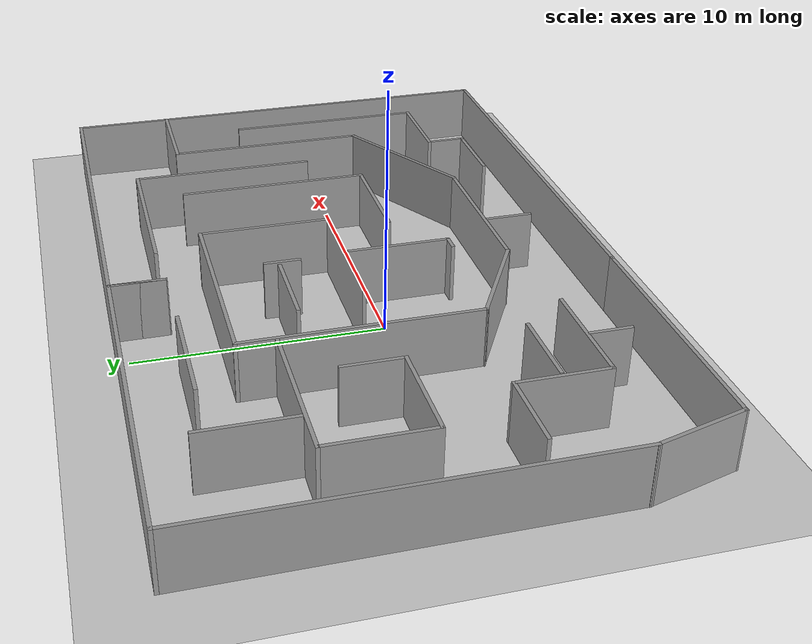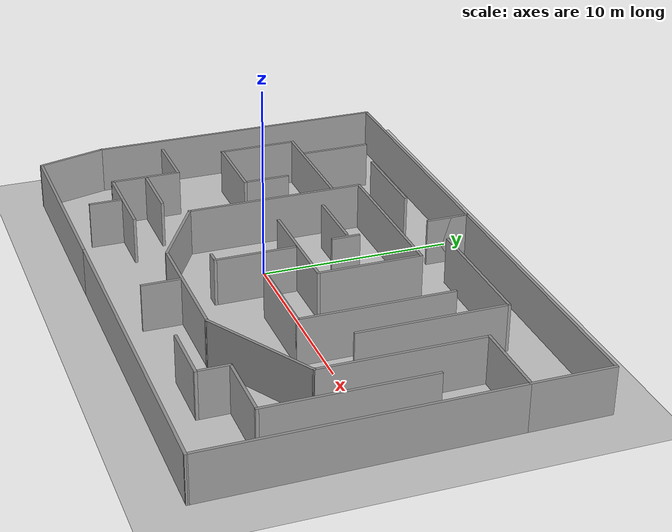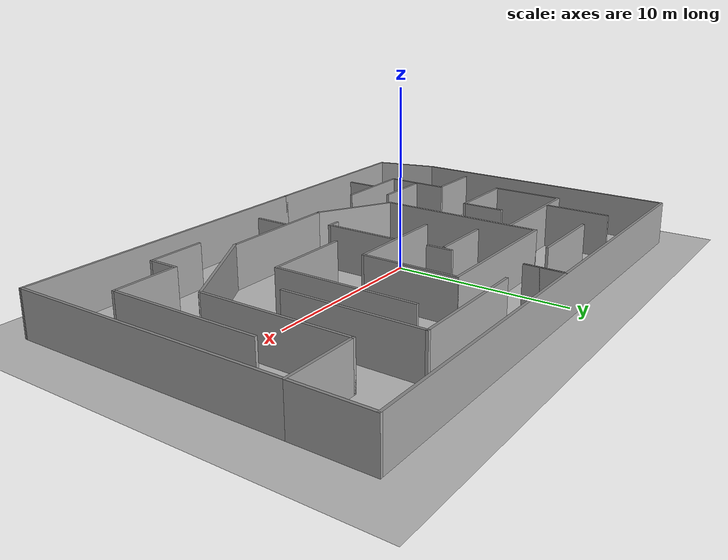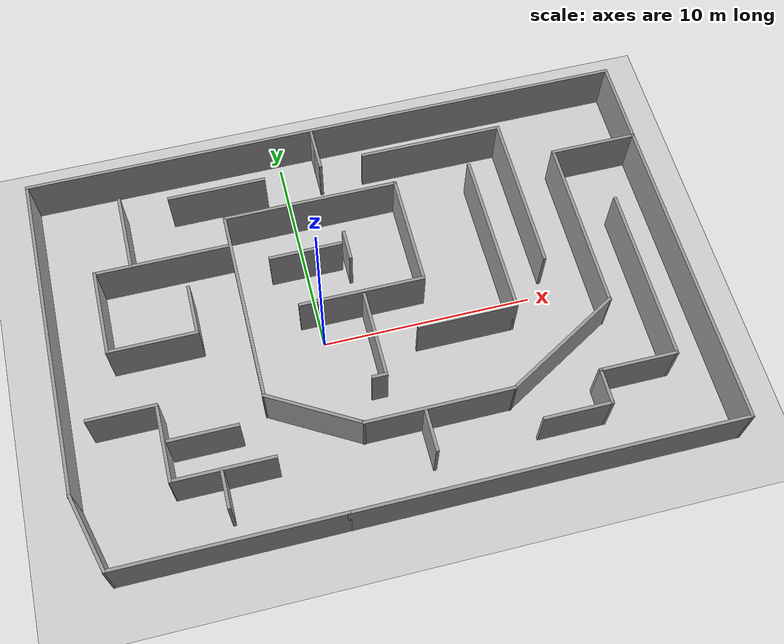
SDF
<sdf version="1.7">
 <world name="default">
  <light name="sun" type="directional">
   <pose>0 0 10 0 -0 0</pose>
   <diffuse>0.8 0.8 0.8 1</diffuse>
   <specular>0.2 0.2 0.2 1</specular>
   <attenuation>
    <range>1000</range>
    <constant>0.9</constant>
    <linear>0.01</linear>
    <quadratic>0.001</quadratic>
   </attenuation>
   <direction>-0.5 0.1 -0.9</direction>
   <spot><inner_angle>0</inner_angle><outer_angle>0</outer_angle><falloff>0</falloff></spot>
  </light>
  <model name="ground_plane">
   <static>1</static>
   <link name="link">
    <collision name="collision">
     <geometry><plane><normal>0 0 1</normal><size>100 100</size></plane></geometry>
     <surface>
      <contact><collide_bitmask>65535</collide_bitmask></contact>
      <friction><ode><mu>100</mu><mu2>50</mu2></ode></friction>
     </surface>
    </collision>
    <visual name="visual">
     <cast_shadows>0</cast_shadows>
     <geometry><plane><normal>0 0 1</normal><size>100 100</size></plane></geometry>
     <material>
      <script><uri>file://media/materials/scripts/gazebo.material</uri><name>Gazebo/Grey</name></script>
     </material>
    </visual>
   </link>
  </model>
  <gravity>0 0 -9.8</gravity>
  <magnetic_field>6e-06 2.3e-05 -4.2e-05</magnetic_field>
  <atmosphere type="adiabatic"/>
  <physics type="ode">
   <max_step_size>0.001</max_step_size>
   <real_time_factor>1</real_time_factor>
   <real_time_update_rate>1000</real_time_update_rate>
  </physics>
  <scene><ambient>0.4 0.4 0.4 1</ambient><background>0.7 0.7 0.7 1</background><shadows>1</shadows></scene>
  <spherical_coordinates>
   <surface_model>EARTH_WGS84</surface_model>
   <latitude_deg>0</latitude_deg>
   <longitude_deg>0</longitude_deg>
   <elevation>0</elevation>
   <heading_deg>0</heading_deg>
  </spherical_coordinates>
  <model name="rede.world">
   <pose>2.4423 0.706411 0 0 -0 0</pose>
   <link name="Wall_10">
    <collision name="Wall_10_Collision">
     <geometry><box><size>4.25 0.15 2.5</size></box></geometry>
     <pose>0 0 1.25 0 -0 0</pose>
    </collision>
    <visual name="Wall_10_Visual">
     <pose>0 0 1.25 0 -0 0</pose>
     <geometry><box><size>4.25 0.15 2.5</size></box></geometry>
     <material>
      <script><uri>file://media/materials/scripts/gazebo.material</uri><name>Gazebo/Grey</name></script>
      <ambient>1 1 1 1</ambient>
     </material>
     <meta><layer>0</layer></meta>
    </visual>
    <pose>14.6482 7.65983 0 0 -0 1.5708</pose>
   </link>
   <link name="Wall_11">
    <collision name="Wall_11_Collision">
     <geometry><box><size>29.5 0.15 2.5</size></box></geometry>
     <pose>0 0 1.25 0 -0 0</pose>
    </collision>
    <visual name="Wall_11_Visual">
     <pose>0 0 1.25 0 -0 0</pose>
     <geometry><box><size>29.5 0.15 2.5</size></box></geometry>
     <material>
      <script><uri>file://media/materials/scripts/gazebo.material</uri><name>Gazebo/Grey</name></script>
      <ambient>1 1 1 1</ambient>
     </material>
     <meta><layer>0</layer></meta>
    </visual>
    <pose>-0.026829 9.70983 0 0 -0 3.14159</pose>
   </link>
   <link name="Wall_12">
    <collision name="Wall_12_Collision">
     <geometry><box><size>16 0.15 2.5</size></box></geometry>
     <pose>0 0 1.25 0 -0 0</pose>
    </collision>
    <visual name="Wall_12_Visual">
     <pose>0 0 1.25 0 -0 0</pose>
     <geometry><box><size>16 0.15 2.5</size></box></geometry>
     <material>
      <script><uri>file://media/materials/scripts/gazebo.material</uri><name>Gazebo/Grey</name></script>
      <ambient>1 1 1 1</ambient>
     </material>
     <meta><layer>0</layer></meta>
    </visual>
    <pose>-14.7018 1.78483 0 0 -0 -1.5708</pose>
   </link>
   <link name="Wall_13">
    <collision name="Wall_13_Collision">
     <geometry><box><size>3.8327 0.15 2.5</size></box></geometry>
     <pose>0 0 1.25 0 -0 0</pose>
    </collision>
    <visual name="Wall_13_Visual">
     <pose>0 0 1.25 0 -0 0</pose>
     <geometry><box><size>3.8327 0.15 2.5</size></box></geometry>
     <material>
      <script><uri>file://media/materials/scripts/gazebo.material</uri><name>Gazebo/Grey</name></script>
      <ambient>1 1 1 1</ambient>
     </material>
     <meta><layer>0</layer></meta>
    </visual>
    <pose>-14.2166 -7.91644 0 0 -0 -1.30414</pose>
   </link>
   <link name="Wall_14">
    <collision name="Wall_14_Collision">
     <geometry><box><size>10.5 0.15 2.5</size></box></geometry>
     <pose>0 0 1.25 0 -0 0</pose>
    </collision>
    <visual name="Wall_14_Visual">
     <pose>0 0 1.25 0 -0 0</pose>
     <geometry><box><size>10.5 0.15 2.5</size></box></geometry>
     <material>
      <script><uri>file://media/materials/scripts/gazebo.material</uri><name>Gazebo/Grey</name></script>
      <ambient>1 1 1 1</ambient>
     </material>
     <meta><layer>0</layer></meta>
    </visual>
    <pose>-8.5564 -9.69272 0 0 -0 0</pose>
   </link>
   <link name="Wall_16">
    <collision name="Wall_16_Collision">
     <geometry><box><size>18.25 0.15 2.5</size></box></geometry>
     <pose>0 0 1.25 0 -0 0</pose>
    </collision>
    <visual name="Wall_16_Visual">
     <pose>0 0 1.25 0 -0 0</pose>
     <geometry><box><size>18.25 0.15 2.5</size></box></geometry>
     <material>
      <script><uri>file://media/materials/scripts/gazebo.material</uri><name>Gazebo/Grey</name></script>
      <ambient>1 1 1 1</ambient>
     </material>
     <meta><layer>0</layer></meta>
    </visual>
    <pose>5.6686 -9.69272 0 0 -0 0</pose>
   </link>
   <link name="Wall_18">
    <collision name="Wall_18_Collision">
     <geometry><box><size>15.4527 0.15 2.5</size></box></geometry>
     <pose>0 0 1.25 0 -0 0</pose>
    </collision>
    <visual name="Wall_18_Visual">
     <pose>0 0 1.25 0 -0 0</pose>
     <geometry><box><size>15.4527 0.15 2.5</size></box></geometry>
     <material>
      <script><uri>file://media/materials/scripts/gazebo.material</uri><name>Gazebo/Grey</name></script>
      <ambient>1 1 1 1</ambient>
     </material>
     <meta><layer>0</layer></meta>
    </visual>
    <pose>14.6834 -2.04144 0 0 -0 -1.56619</pose>
   </link>
   <link name="Wall_20">
    <collision name="Wall_20_Collision">
     <geometry><box><size>8.5 0.15 2.5</size></box></geometry>
     <pose>0 0 1.25 0 -0 0</pose>
    </collision>
    <visual name="Wall_20_Visual">
     <pose>0 0 1.25 0 -0 0</pose>
     <geometry><box><size>8.5 0.15 2.5</size></box></geometry>
     <material>
      <script><uri>file://media/materials/scripts/gazebo.material</uri><name>Gazebo/Grey</name></script>
      <ambient>1 1 1 1</ambient>
     </material>
     <meta><layer>0</layer></meta>
    </visual>
    <pose>-1.60981 5.73483 0 0 -0 0</pose>
   </link>
   <link name="Wall_21">
    <collision name="Wall_21_Collision">
     <geometry><box><size>5.5 0.15 2.5</size></box></geometry>
     <pose>0 0 1.25 0 -0 0</pose>
    </collision>
    <visual name="Wall_21_Visual">
     <pose>0 0 1.25 0 -0 0</pose>
     <geometry><box><size>5.5 0.15 2.5</size></box></geometry>
     <material>
      <script><uri>file://media/materials/scripts/gazebo.material</uri><name>Gazebo/Grey</name></script>
      <ambient>1 1 1 1</ambient>
     </material>
     <meta><layer>0</layer></meta>
    </visual>
    <pose>2.56519 3.05983 0 0 -0 -1.5708</pose>
   </link>
   <link name="Wall_22">
    <collision name="Wall_22_Collision">
     <geometry><box><size>6 0.15 2.5</size></box></geometry>
     <pose>0 0 1.25 0 -0 0</pose>
    </collision>
    <visual name="Wall_22_Visual">
     <pose>0 0 1.25 0 -0 0</pose>
     <geometry><box><size>6 0.15 2.5</size></box></geometry>
     <material>
      <script><uri>file://media/materials/scripts/gazebo.material</uri><name>Gazebo/Grey</name></script>
      <ambient>1 1 1 1</ambient>
     </material>
     <meta><layer>0</layer></meta>
    </visual>
    <pose>-0.359807 0.384829 0 0 -0 3.14159</pose>
   </link>
   <link name="Wall_24">
    <collision name="Wall_24_Collision">
     <geometry><box><size>1.5 0.15 2.5</size></box></geometry>
     <pose>0 0 1.25 0 -0 0</pose>
    </collision>
    <visual name="Wall_24_Visual">
     <pose>0 0 1.25 0 -0 0</pose>
     <geometry><box><size>1.5 0.15 2.5</size></box></geometry>
     <material>
      <script><uri>file://media/materials/scripts/gazebo.material</uri><name>Gazebo/Grey</name></script>
      <ambient>1 1 1 1</ambient>
     </material>
     <meta><layer>0</layer></meta>
    </visual>
    <pose>-0.465827 2.95254 0 0 -0 -1.5708</pose>
   </link>
   <link name="Wall_26">
    <collision name="Wall_26_Collision">
     <geometry><box><size>3.5 0.15 2.5</size></box></geometry>
     <pose>0 0 1.25 0 -0 0</pose>
    </collision>
    <visual name="Wall_26_Visual">
     <pose>0 0 1.25 0 -0 0</pose>
     <geometry><box><size>3.5 0.15 2.5</size></box></geometry>
     <material>
      <script><uri>file://media/materials/scripts/gazebo.material</uri><name>Gazebo/Grey</name></script>
      <ambient>1 1 1 1</ambient>
     </material>
     <meta><layer>0</layer></meta>
    </visual>
    <pose>-2.43183 3.10162 0 0 -0 0</pose>
   </link>
   <link name="Wall_28">
    <collision name="Wall_28_Collision">
     <geometry><box><size>4.25 0.15 2.5</size></box></geometry>
     <pose>0 0 1.25 0 -0 0</pose>
    </collision>
    <visual name="Wall_28_Visual">
     <pose>0 0 1.25 0 -0 0</pose>
     <geometry><box><size>4.25 0.15 2.5</size></box></geometry>
     <material>
      <script><uri>file://media/materials/scripts/gazebo.material</uri><name>Gazebo/Grey</name></script>
      <ambient>1 1 1 1</ambient>
     </material>
     <meta><layer>0</layer></meta>
    </visual>
    <pose>-0.304005 -1.86118 0 0 -0 -1.5708</pose>
   </link>
   <link name="Wall_29">
    <collision name="Wall_29_Collision">
     <geometry><box><size>0.75 0.15 2.5</size></box></geometry>
     <pose>0 0 1.25 0 -0 0</pose>
    </collision>
    <visual name="Wall_29_Visual">
     <pose>0 0 1.25 0 -0 0</pose>
     <geometry><box><size>0.75 0.15 2.5</size></box></geometry>
     <material>
      <script><uri>file://media/materials/scripts/gazebo.material</uri><name>Gazebo/Grey</name></script>
      <ambient>1 1 1 1</ambient>
     </material>
     <meta><layer>0</layer></meta>
    </visual>
    <pose>-0.604004 -3.91118 0 0 -0 3.14159</pose>
   </link>
   <link name="Wall_31">
    <collision name="Wall_31_Collision">
     <geometry><box><size>6.5 0.15 2.5</size></box></geometry>
     <pose>0 0 1.25 0 -0 0</pose>
    </collision>
    <visual name="Wall_31_Visual">
     <pose>0 0 1.25 0 -0 0</pose>
     <geometry><box><size>6.5 0.15 2.5</size></box></geometry>
     <material>
      <script><uri>file://media/materials/scripts/gazebo.material</uri><name>Gazebo/Grey</name></script>
      <ambient>1 1 1 1</ambient>
     </material>
     <meta><layer>0</layer></meta>
    </visual>
    <pose>-9.02142 4.23438 0 0 -0 3.14159</pose>
   </link>
   <link name="Wall_32">
    <collision name="Wall_32_Collision">
     <geometry><box><size>4.25 0.15 2.5</size></box></geometry>
     <pose>0 0 1.25 0 -0 0</pose>
    </collision>
    <visual name="Wall_32_Visual">
     <pose>0 0 1.25 0 -0 0</pose>
     <geometry><box><size>4.25 0.15 2.5</size></box></geometry>
     <material>
      <script><uri>file://media/materials/scripts/gazebo.material</uri><name>Gazebo/Grey</name></script>
      <ambient>1 1 1 1</ambient>
     </material>
     <meta><layer>0</layer></meta>
    </visual>
    <pose>-12.1964 2.18438 0 0 -0 -1.5708</pose>
   </link>
   <link name="Wall_33">
    <collision name="Wall_33_Collision">
     <geometry><box><size>4.25 0.15 2.5</size></box></geometry>
     <pose>0 0 1.25 0 -0 0</pose>
    </collision>
    <visual name="Wall_33_Visual">
     <pose>0 0 1.25 0 -0 0</pose>
     <geometry><box><size>4.25 0.15 2.5</size></box></geometry>
     <material>
      <script><uri>file://media/materials/scripts/gazebo.material</uri><name>Gazebo/Grey</name></script>
      <ambient>1 1 1 1</ambient>
     </material>
     <meta><layer>0</layer></meta>
    </visual>
    <pose>-10.1464 0.134376 0 0 -0 0</pose>
   </link>
   <link name="Wall_34">
    <collision name="Wall_34_Collision">
     <geometry><box><size>2.5 0.15 2.5</size></box></geometry>
     <pose>0 0 1.25 0 -0 0</pose>
    </collision>
    <visual name="Wall_34_Visual">
     <pose>0 0 1.25 0 -0 0</pose>
     <geometry><box><size>2.5 0.15 2.5</size></box></geometry>
     <material>
      <script><uri>file://media/materials/scripts/gazebo.material</uri><name>Gazebo/Grey</name></script>
      <ambient>1 1 1 1</ambient>
     </material>
     <meta><layer>0</layer></meta>
    </visual>
    <pose>-8.09642 1.30938 0 0 -0 1.5708</pose>
   </link>
   <link name="Wall_37">
    <collision name="Wall_37_Collision">
     <geometry><box><size>3.75 0.15 2.5</size></box></geometry>
     <pose>0 0 1.25 0 -0 0</pose>
    </collision>
    <visual name="Wall_37_Visual">
     <pose>0 0 1.25 0 -0 0</pose>
     <geometry><box><size>3.75 0.15 2.5</size></box></geometry>
     <material>
      <script><uri>file://media/materials/scripts/gazebo.material</uri><name>Gazebo/Grey</name></script>
      <ambient>1 1 1 1</ambient>
     </material>
     <meta><layer>0</layer></meta>
    </visual>
    <pose>-10.4988 6.15574 0 0 -0 1.5708</pose>
   </link>
   <link name="Wall_39">
    <collision name="Wall_39_Collision">
     <geometry><box><size>4.75 0.15 2.5</size></box></geometry>
     <pose>0 0 1.25 0 -0 0</pose>
    </collision>
    <visual name="Wall_39_Visual">
     <pose>0 0 1.25 0 -0 0</pose>
     <geometry><box><size>4.75 0.15 2.5</size></box></geometry>
     <material>
      <script><uri>file://media/materials/scripts/gazebo.material</uri><name>Gazebo/Grey</name></script>
      <ambient>1 1 1 1</ambient>
     </material>
     <meta><layer>0</layer></meta>
    </visual>
    <pose>4.01877 -1.99578 0 0 -0 0</pose>
   </link>
   <link name="Wall_4">
    <collision name="Wall_4_Collision">
     <geometry><box><size>9.5 0.15 2.5</size></box></geometry>
     <pose>0 0 1.25 0 -0 0</pose>
    </collision>
    <visual name="Wall_4_Visual">
     <pose>0 0 1.25 0 -0 0</pose>
     <geometry><box><size>9.5 0.15 2.5</size></box></geometry>
     <material>
      <script><uri>file://media/materials/scripts/gazebo.material</uri><name>Gazebo/Grey</name></script>
      <ambient>1 1 1 1</ambient>
     </material>
     <meta><layer>0</layer></meta>
    </visual>
    <pose>-5.78481 1.05983 0 0 -0 -1.5708</pose>
   </link>
   <link name="Wall_40">
    <collision name="Wall_40_Collision">
     <geometry><box><size>8 0.15 2.5</size></box></geometry>
     <pose>0 0 1.25 0 -0 0</pose>
    </collision>
    <visual name="Wall_40_Visual">
     <pose>0 0 1.25 0 -0 0</pose>
     <geometry><box><size>8 0.15 2.5</size></box></geometry>
     <material>
      <script><uri>file://media/materials/scripts/gazebo.material</uri><name>Gazebo/Grey</name></script>
      <ambient>1 1 1 1</ambient>
     </material>
     <meta><layer>0</layer></meta>
    </visual>
    <pose>6.31877 1.92922 0 0 -0 1.5708</pose>
   </link>
   <link name="Wall_42">
    <collision name="Wall_42_Collision">
     <geometry><box><size>7.75 0.15 2.5</size></box></geometry>
     <pose>0 0 1.25 0 -0 0</pose>
    </collision>
    <visual name="Wall_42_Visual">
     <pose>0 0 1.25 0 -0 0</pose>
     <geometry><box><size>7.75 0.15 2.5</size></box></geometry>
     <material>
      <script><uri>file://media/materials/scripts/gazebo.material</uri><name>Gazebo/Grey</name></script>
      <ambient>1 1 1 1</ambient>
     </material>
     <meta><layer>0</layer></meta>
    </visual>
    <pose>8.31303 3.86745 0 0 -0 1.5708</pose>
   </link>
   <link name="Wall_43">
    <collision name="Wall_43_Collision">
     <geometry><box><size>7 0.15 2.5</size></box></geometry>
     <pose>0 0 1.25 0 -0 0</pose>
    </collision>
    <visual name="Wall_43_Visual">
     <pose>0 0 1.25 0 -0 0</pose>
     <geometry><box><size>7 0.15 2.5</size></box></geometry>
     <material>
      <script><uri>file://media/materials/scripts/gazebo.material</uri><name>Gazebo/Grey</name></script>
      <ambient>1 1 1 1</ambient>
     </material>
     <meta><layer>0</layer></meta>
    </visual>
    <pose>4.88803 7.66745 0 0 -0 3.14159</pose>
   </link>
   <link name="Wall_45">
    <collision name="Wall_45_Collision">
     <geometry><box><size>2.25 0.15 2.5</size></box></geometry>
     <pose>0 0 1.25 0 -0 0</pose>
    </collision>
    <visual name="Wall_45_Visual">
     <pose>0 0 1.25 0 -0 0</pose>
     <geometry><box><size>2.25 0.15 2.5</size></box></geometry>
     <material>
      <script><uri>file://media/materials/scripts/gazebo.material</uri><name>Gazebo/Grey</name></script>
      <ambient>1 1 1 1</ambient>
     </material>
     <meta><layer>0</layer></meta>
    </visual>
    <pose>-0.70856 8.64588 0 0 -0 -1.5708</pose>
   </link>
   <link name="Wall_46">
    <collision name="Wall_46_Collision">
     <geometry><box><size>2.25 0.15 2.5</size></box></geometry>
     <pose>0 0 1.25 0 -0 0</pose>
    </collision>
    <visual name="Wall_46_Visual">
     <pose>0 0 1.25 0 -0 0</pose>
     <geometry><box><size>2.25 0.15 2.5</size></box></geometry>
     <material>
      <script><uri>file://media/materials/scripts/gazebo.material</uri><name>Gazebo/Grey</name></script>
      <ambient>1 1 1 1</ambient>
     </material>
     <meta><layer>0</layer></meta>
    </visual>
    <pose>-0.70856 8.60542 0 0 -0 1.5708</pose>
   </link>
   <link name="Wall_48">
    <collision name="Wall_48_Collision">
     <geometry><box><size>4.75 0.15 2.5</size></box></geometry>
     <pose>0 0 1.25 0 -0 0</pose>
    </collision>
    <visual name="Wall_48_Visual">
     <pose>0 0 1.25 0 -0 0</pose>
     <geometry><box><size>4.75 0.15 2.5</size></box></geometry>
     <material>
      <script><uri>file://media/materials/scripts/gazebo.material</uri><name>Gazebo/Grey</name></script>
      <ambient>1 1 1 1</ambient>
     </material>
     <meta><layer>0</layer></meta>
    </visual>
    <pose>-5.85239 7.47082 0 0 -0 0</pose>
   </link>
   <link name="Wall_5">
    <collision name="Wall_5_Collision">
     <geometry><box><size>4.75 0.15 2.5</size></box></geometry>
     <pose>0 0 1.25 0 -0 0</pose>
    </collision>
    <visual name="Wall_5_Visual">
     <pose>0 0 1.25 0 -0 0</pose>
     <geometry><box><size>4.75 0.15 2.5</size></box></geometry>
     <material>
      <script><uri>file://media/materials/scripts/gazebo.material</uri><name>Gazebo/Grey</name></script>
      <ambient>1 1 1 1</ambient>
     </material>
     <meta><layer>0</layer></meta>
    </visual>
    <pose>-3.79295 -4.76517 0 0 -0 -0.523599</pose>
   </link>
   <link name="Wall_52">
    <collision name="Wall_52_Collision">
     <geometry><box><size>3.25 0.15 2.5</size></box></geometry>
     <pose>0 0 1.25 0 -0 0</pose>
    </collision>
    <visual name="Wall_52_Visual">
     <pose>0 0 1.25 0 -0 0</pose>
     <geometry><box><size>3.25 0.15 2.5</size></box></geometry>
     <material>
      <script><uri>file://media/materials/scripts/gazebo.material</uri><name>Gazebo/Grey</name></script>
      <ambient>1 1 1 1</ambient>
     </material>
     <meta><layer>0</layer></meta>
    </visual>
    <pose>-12.0084 -2.92626 0 0 -0 3.14159</pose>
   </link>
   <link name="Wall_55">
    <collision name="Wall_55_Collision">
     <geometry><box><size>3.75 0.15 2.5</size></box></geometry>
     <pose>0 0 1.25 0 -0 0</pose>
    </collision>
    <visual name="Wall_55_Visual">
     <pose>0 0 1.25 0 -0 0</pose>
     <geometry><box><size>3.75 0.15 2.5</size></box></geometry>
     <material>
      <script><uri>file://media/materials/scripts/gazebo.material</uri><name>Gazebo/Grey</name></script>
      <ambient>1 1 1 1</ambient>
     </material>
     <meta><layer>0</layer></meta>
    </visual>
    <pose>-10.4584 -4.72626 0 0 -0 -1.5708</pose>
   </link>
   <link name="Wall_56">
    <collision name="Wall_56_Collision">
     <geometry><box><size>4.75 0.15 2.5</size></box></geometry>
     <pose>0 0 1.25 0 -0 0</pose>
    </collision>
    <visual name="Wall_56_Visual">
     <pose>0 0 1.25 0 -0 0</pose>
     <geometry><box><size>4.75 0.15 2.5</size></box></geometry>
     <material>
      <script><uri>file://media/materials/scripts/gazebo.material</uri><name>Gazebo/Grey</name></script>
      <ambient>1 1 1 1</ambient>
     </material>
     <meta><layer>0</layer></meta>
    </visual>
    <pose>-8.15836 -6.52626 0 0 -0 0</pose>
   </link>
   <link name="Wall_58">
    <collision name="Wall_58_Collision">
     <geometry><box><size>2 0.15 2.5</size></box></geometry>
     <pose>0 0 1.25 0 -0 0</pose>
    </collision>
    <visual name="Wall_58_Visual">
     <pose>0 0 1.25 0 -0 0</pose>
     <geometry><box><size>2 0.15 2.5</size></box></geometry>
     <material>
      <script><uri>file://media/materials/scripts/gazebo.material</uri><name>Gazebo/Grey</name></script>
      <ambient>1 1 1 1</ambient>
     </material>
     <meta><layer>0</layer></meta>
    </visual>
    <pose>0.950118 -6.96634 0 0 -0 -1.5708</pose>
   </link>
   <link name="Wall_6">
    <collision name="Wall_6_Collision">
     <geometry><box><size>7 0.15 2.5</size></box></geometry>
     <pose>0 0 1.25 0 -0 0</pose>
    </collision>
    <visual name="Wall_6_Visual">
     <pose>0 0 1.25 0 -0 0</pose>
     <geometry><box><size>7 0.15 2.5</size></box></geometry>
     <material>
      <script><uri>file://media/materials/scripts/gazebo.material</uri><name>Gazebo/Grey</name></script>
      <ambient>1 1 1 1</ambient>
     </material>
     <meta><layer>0</layer></meta>
    </visual>
    <pose>1.62391 -5.91517 0 0 -0 0</pose>
   </link>
   <link name="Wall_60">
    <collision name="Wall_60_Collision">
     <geometry><box><size>8.5 0.15 2.5</size></box></geometry>
     <pose>0 0 1.25 0 -0 0</pose>
    </collision>
    <visual name="Wall_60_Visual">
     <pose>0 0 1.25 0 -0 0</pose>
     <geometry><box><size>8.5 0.15 2.5</size></box></geometry>
     <material>
      <script><uri>file://media/materials/scripts/gazebo.material</uri><name>Gazebo/Grey</name></script>
      <ambient>1 1 1 1</ambient>
     </material>
     <meta><layer>0</layer></meta>
    </visual>
    <pose>12.6013 -1.84204 0 0 -0 -1.5708</pose>
   </link>
   <link name="Wall_61">
    <collision name="Wall_61_Collision">
     <geometry><box><size>3.75 0.15 2.5</size></box></geometry>
     <pose>0 0 1.25 0 -0 0</pose>
    </collision>
    <visual name="Wall_61_Visual">
     <pose>0 0 1.25 0 -0 0</pose>
     <geometry><box><size>3.75 0.15 2.5</size></box></geometry>
     <material>
      <script><uri>file://media/materials/scripts/gazebo.material</uri><name>Gazebo/Grey</name></script>
      <ambient>1 1 1 1</ambient>
     </material>
     <meta><layer>0</layer></meta>
    </visual>
    <pose>10.8013 -6.01703 0 0 -0 3.14159</pose>
   </link>
   <link name="Wall_62">
    <collision name="Wall_62_Collision">
     <geometry><box><size>1.75 0.15 2.5</size></box></geometry>
     <pose>0 0 1.25 0 -0 0</pose>
    </collision>
    <visual name="Wall_62_Visual">
     <pose>0 0 1.25 0 -0 0</pose>
     <geometry><box><size>1.75 0.15 2.5</size></box></geometry>
     <material>
      <script><uri>file://media/materials/scripts/gazebo.material</uri><name>Gazebo/Grey</name></script>
      <ambient>1 1 1 1</ambient>
     </material>
     <meta><layer>0</layer></meta>
    </visual>
    <pose>9.00132 -6.81704 0 0 -0 -1.5708</pose>
   </link>
   <link name="Wall_63">
    <collision name="Wall_63_Collision">
     <geometry><box><size>3.25 0.15 2.5</size></box></geometry>
     <pose>0 0 1.25 0 -0 0</pose>
    </collision>
    <visual name="Wall_63_Visual">
     <pose>0 0 1.25 0 -0 0</pose>
     <geometry><box><size>3.25 0.15 2.5</size></box></geometry>
     <material>
      <script><uri>file://media/materials/scripts/gazebo.material</uri><name>Gazebo/Grey</name></script>
      <ambient>1 1 1 1</ambient>
     </material>
     <meta><layer>0</layer></meta>
    </visual>
    <pose>7.45132 -7.61703 0 0 -0 3.14159</pose>
   </link>
   <link name="Wall_65">
    <collision name="Wall_65_Collision">
     <geometry><box><size>3.25 0.15 2.5</size></box></geometry>
     <pose>0 0 1.25 0 -0 0</pose>
    </collision>
    <visual name="Wall_65_Visual">
     <pose>0 0 1.25 0 -0 0</pose>
     <geometry><box><size>3.25 0.15 2.5</size></box></geometry>
     <material>
      <script><uri>file://media/materials/scripts/gazebo.material</uri><name>Gazebo/Grey</name></script>
      <ambient>1 1 1 1</ambient>
     </material>
     <meta><layer>0</layer></meta>
    </visual>
    <pose>-8.70608 -4.70631 0 0 -0 0</pose>
   </link>
   <link name="Wall_67">
    <collision name="Wall_67_Collision">
     <geometry><box><size>1.75 0.15 2.5</size></box></geometry>
     <pose>0 0 1.25 0 -0 0</pose>
    </collision>
    <visual name="Wall_67_Visual">
     <pose>0 0 1.25 0 -0 0</pose>
     <geometry><box><size>1.75 0.15 2.5</size></box></geometry>
     <material>
      <script><uri>file://media/materials/scripts/gazebo.material</uri><name>Gazebo/Grey</name></script>
      <ambient>1 1 1 1</ambient>
     </material>
     <meta><layer>0</layer></meta>
    </visual>
    <pose>-8.2333 -7.44817 0 0 -0 -1.5708</pose>
   </link>
   <link name="Wall_7">
    <collision name="Wall_7_Collision">
     <geometry><box><size>6.5 0.15 2.5</size></box></geometry>
     <pose>0 0 1.25 0 -0 0</pose>
    </collision>
    <visual name="Wall_7_Visual">
     <pose>0 0 1.25 0 -0 0</pose>
     <geometry><box><size>6.5 0.15 2.5</size></box></geometry>
     <material>
      <script><uri>file://media/materials/scripts/gazebo.material</uri><name>Gazebo/Grey</name></script>
      <ambient>1 1 1 1</ambient>
     </material>
     <meta><layer>0</layer></meta>
    </visual>
    <pose>7.79854 -4.32767 0 0 -0 0.523599</pose>
   </link>
   <link name="Wall_8">
    <collision name="Wall_8_Collision">
     <geometry><box><size>8.5 0.15 2.5</size></box></geometry>
     <pose>0 0 1.25 0 -0 0</pose>
    </collision>
    <visual name="Wall_8_Visual">
     <pose>0 0 1.25 0 -0 0</pose>
     <geometry><box><size>8.5 0.15 2.5</size></box></geometry>
     <material>
      <script><uri>file://media/materials/scripts/gazebo.material</uri><name>Gazebo/Grey</name></script>
      <ambient>1 1 1 1</ambient>
     </material>
     <meta><layer>0</layer></meta>
    </visual>
    <pose>10.5482 1.43483 0 0 -0 1.5708</pose>
   </link>
   <link name="Wall_9">
    <collision name="Wall_9_Collision">
     <geometry><box><size>4.25 0.15 2.5</size></box></geometry>
     <pose>0 0 1.25 0 -0 0</pose>
    </collision>
    <visual name="Wall_9_Visual">
     <pose>0 0 1.25 0 -0 0</pose>
     <geometry><box><size>4.25 0.15 2.5</size></box></geometry>
     <material>
      <script><uri>file://media/materials/scripts/gazebo.material</uri><name>Gazebo/Grey</name></script>
      <ambient>1 1 1 1</ambient>
     </material>
     <meta><layer>0</layer></meta>
    </visual>
    <pose>12.5982 5.60983 0 0 -0 0</pose>
   </link>
   <static>1</static>
  </model>
 </world>
</sdf>
